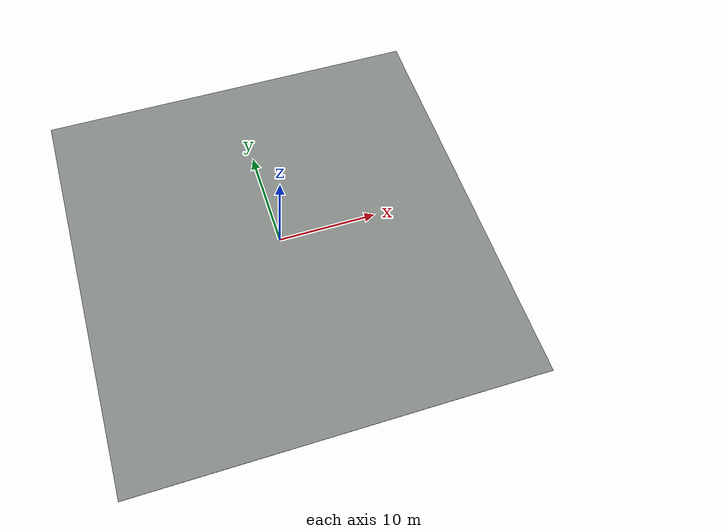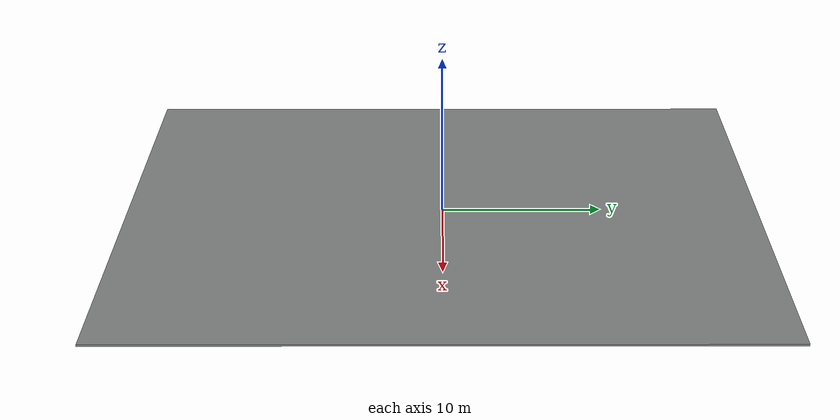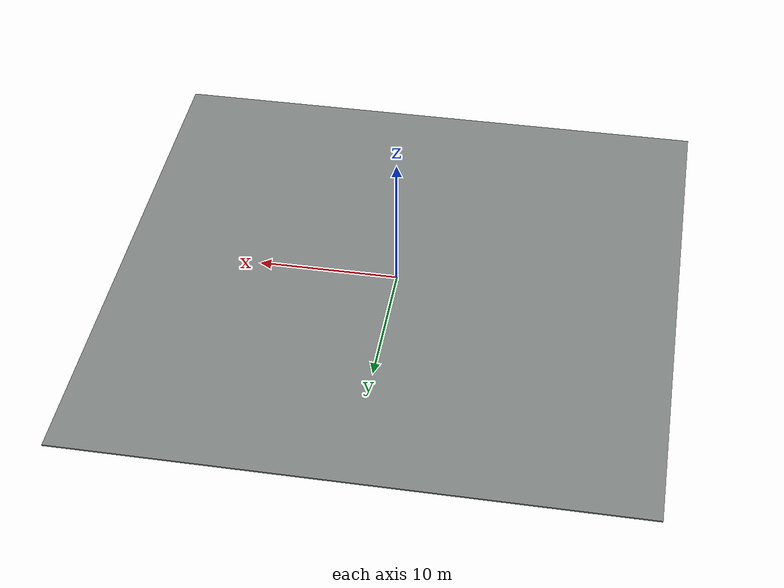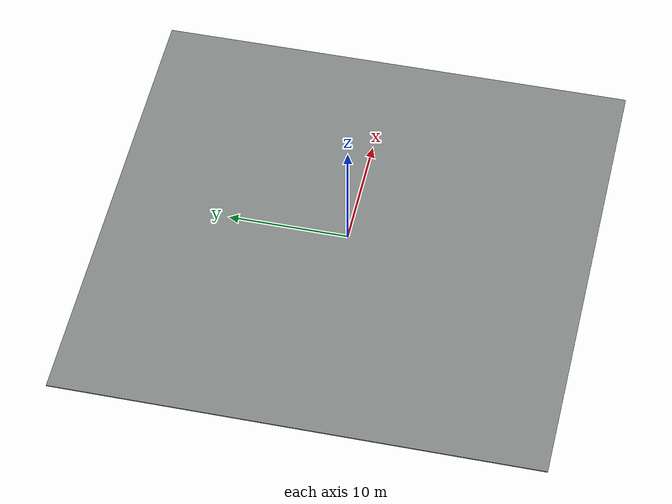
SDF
<?xml version='1.0' encoding='utf-8'?>
<sdf version='1.7'>
  <world name='default'>
    <physics name='1ms' type='ode'>
      <max_step_size>0.001</max_step_size>
      <real_time_factor>1.0</real_time_factor>
    </physics>

    <plugin filename='libignition-gazebo-physics-system.so'
      name='ignition::gazebo::systems::Physics'>
    </plugin>
    <plugin filename='libignition-gazebo-scene-broadcaster-system.so'
      name='ignition::gazebo::systems::SceneBroadcaster'>
    </plugin>
    <plugin filename='libignition-gazebo-user-commands-system.so'
      name='ignition::gazebo::systems::UserCommands'>
    </plugin>
    <plugin filename='libignition-gazebo-sensors-system.so'
      name='ignition::gazebo::systems::Sensors'>
    </plugin>
    <plugin filename='libignition-gazebo-imu-system.so'
      name='ignition::gazebo::systems::Imu'>
    </plugin>
    <plugin filename='libignition-gazebo-contact-system.so'
      name='ignition::gazebo::systems::Contact'>
    </plugin>

    <light type='directional' name='sun'>
      <pose>0 0 10 0 0 0</pose>
      <diffuse>0.95 0.95 0.9 1</diffuse>
      <specular>0.2 0.2 0.2 1</specular>
      <direction>-0.5 0.2 -1</direction>
      <cast_shadows>false</cast_shadows>
    </light>

    <model name='ground_plane'>
      <static>true</static>
      <link name='ground_link'>
        <collision name='ground_collision'>
          <geometry>
            <box>
              <size>40 40 0.1</size>
            </box>
          </geometry>
          <pose>0 0 -0.05 0 0 0</pose>
        </collision>
        <visual name='ground_visual'>
          <geometry>
            <box>
              <size>40 40 0.1</size>
            </box>
          </geometry>
          <pose>0 0 -0.05 0 0 0</pose>
          <material>
            <ambient>0.42 0.44 0.43 1</ambient>
            <diffuse>0.52 0.54 0.53 1</diffuse>
            <specular>0.04 0.04 0.04 1</specular>
          </material>
        </visual>
      </link>
    </model>
  </world>
</sdf>
